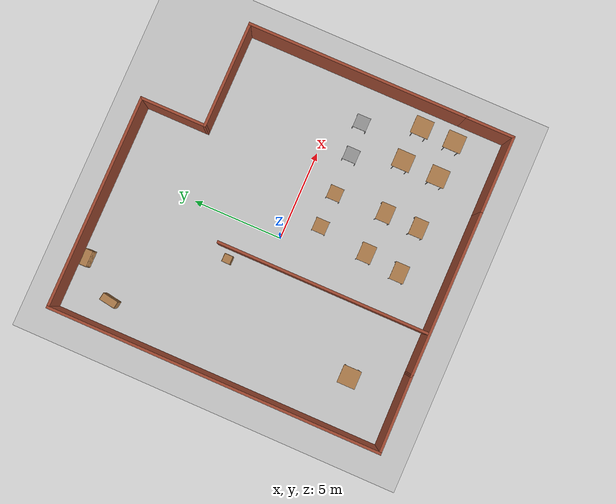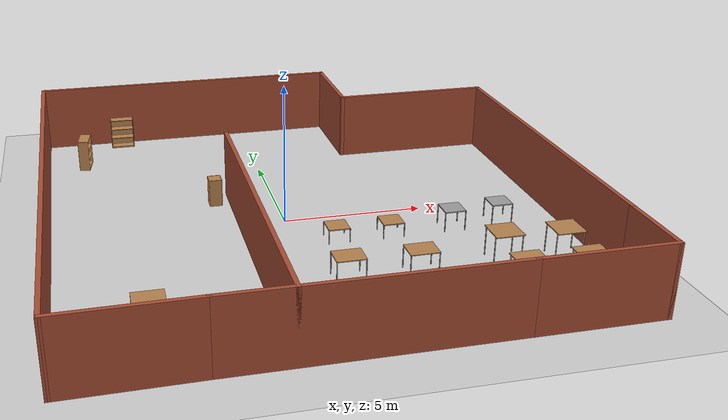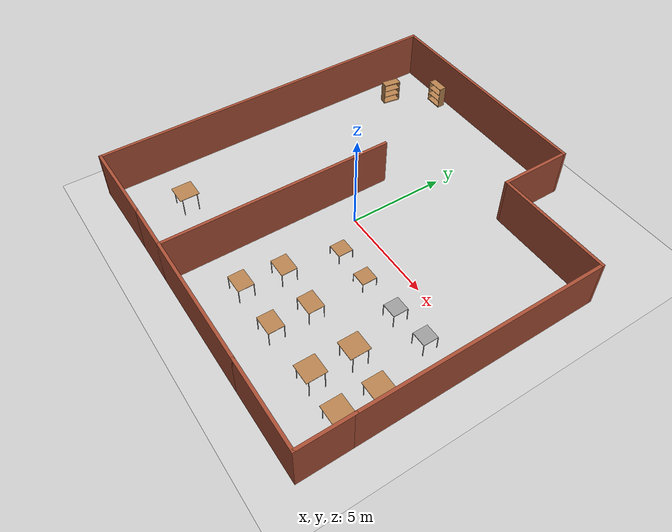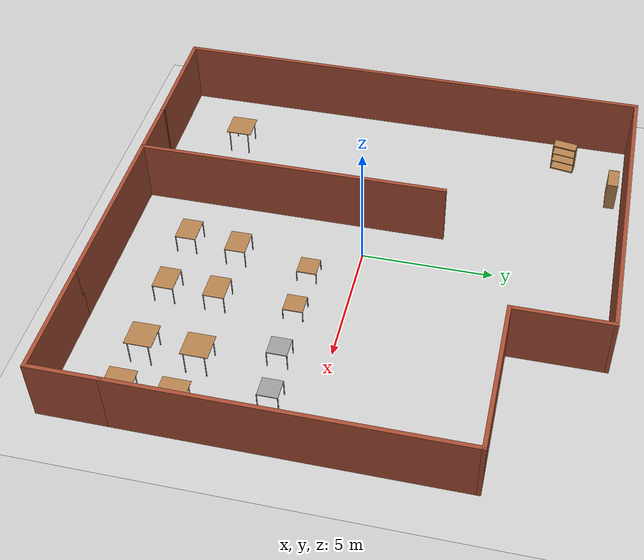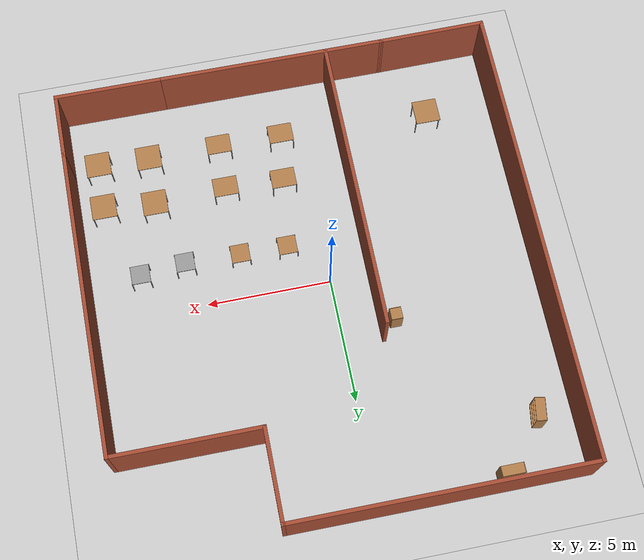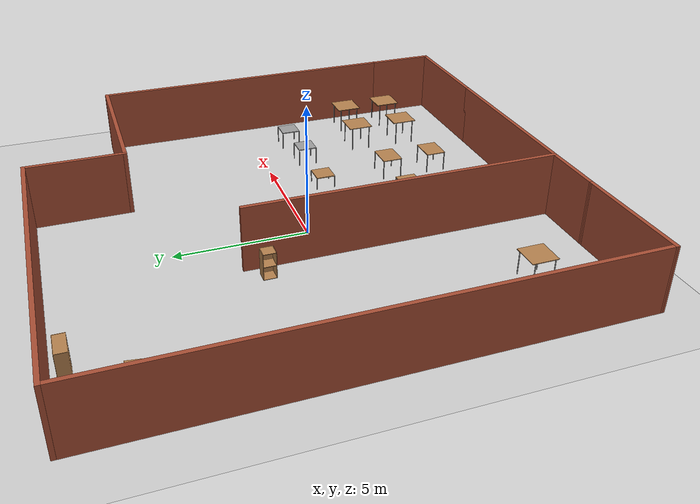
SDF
<sdf version="1.6">
 <world name="default">
  <light name="sun" type="directional">
   <pose>0 0 10 0 -0 0</pose>
   <diffuse>0.8 0.8 0.8 1</diffuse>
   <specular>0.2 0.2 0.2 1</specular>
   <attenuation>
    <range>1000</range>
    <constant>0.9</constant>
    <linear>0.01</linear>
    <quadratic>0.001</quadratic>
   </attenuation>
   <direction>-0.5 0.1 -0.9</direction>
  </light>
  <model name="ground_plane">
   <static>1</static>
   <link name="link">
    <collision name="collision">
     <geometry><plane><normal>0 0 1</normal><size>100 100</size></plane></geometry>
     <surface>
      <contact><collide_bitmask>65535</collide_bitmask></contact>
      <friction><ode><mu>100</mu><mu2>50</mu2></ode></friction>
     </surface>
    </collision>
    <visual name="visual">
     <cast_shadows>0</cast_shadows>
     <geometry><plane><normal>0 0 1</normal><size>100 100</size></plane></geometry>
     <material>
      <script><uri>file://media/materials/scripts/gazebo.material</uri><name>Gazebo/Grey</name></script>
     </material>
    </visual>
   </link>
  </model>
  <gravity>0 0 -9.8</gravity>
  <magnetic_field>6e-06 2.3e-05 -4.2e-05</magnetic_field>
  <atmosphere type="adiabatic"/>
  <physics name="default_physics" default="0" type="ode">
   <max_step_size>0.001</max_step_size>
   <real_time_factor>1</real_time_factor>
   <real_time_update_rate>1000</real_time_update_rate>
  </physics>
  <scene><ambient>0.4 0.4 0.4 1</ambient><background>0.7 0.7 0.7 1</background><shadows>1</shadows></scene>
  <audio><device>default</device></audio>
  <spherical_coordinates>
   <surface_model>EARTH_WGS84</surface_model>
   <latitude_deg>0</latitude_deg>
   <longitude_deg>0</longitude_deg>
   <elevation>0</elevation>
   <heading_deg>0</heading_deg>
  </spherical_coordinates>
  <model name="Bricks_room">
   <pose>0.680196 0.179045 0 0 -0 0</pose>
   <link name="Wall_10">
    <collision name="Wall_10_Collision">
     <geometry><box><size>3.75 0.15 2.5</size></box></geometry>
     <pose>0 0 1.25 0 -0 0</pose>
    </collision>
    <visual name="Wall_10_Visual">
     <pose>0 0 1.25 0 -0 0</pose>
     <geometry><box><size>3.75 0.15 2.5</size></box></geometry>
     <material>
      <script><uri>file://media/materials/scripts/gazebo.material</uri><name>Gazebo/Bricks</name></script>
      <ambient>1 1 1 1</ambient>
     </material>
     <meta><layer>0</layer></meta>
    </visual>
    <pose>3.00044 7.50044 0 0 -0 1.5708</pose>
   </link>
   <link name="Wall_11">
    <collision name="Wall_11_Collision">
     <geometry><box><size>12 0.15 2.5</size></box></geometry>
     <pose>0 0 1.25 0 -0 0</pose>
    </collision>
    <visual name="Wall_11_Visual">
     <pose>0 0 1.25 0 -0 0</pose>
     <geometry><box><size>12 0.15 2.5</size></box></geometry>
     <material>
      <script><uri>file://media/materials/scripts/gazebo.material</uri><name>Gazebo/Bricks</name></script>
      <ambient>1 1 1 1</ambient>
     </material>
     <meta><layer>0</layer></meta>
    </visual>
    <pose>-2.92456 9.30044 0 0 -0 3.14159</pose>
   </link>
   <link name="Wall_12">
    <collision name="Wall_12_Collision">
     <geometry><box><size>18.75 0.15 2.5</size></box></geometry>
     <pose>0 0 1.25 0 -0 0</pose>
    </collision>
    <visual name="Wall_12_Visual">
     <pose>0 0 1.25 0 -0 0</pose>
     <geometry><box><size>18.75 0.15 2.5</size></box></geometry>
     <material>
      <script><uri>file://media/materials/scripts/gazebo.material</uri><name>Gazebo/Bricks</name></script>
      <ambient>1 1 1 1</ambient>
     </material>
     <meta><layer>0</layer></meta>
    </visual>
    <pose>-8.84956 0.000438 0 0 -0 -1.5708</pose>
   </link>
   <link name="Wall_13">
    <collision name="Wall_13_Collision">
     <geometry><box><size>4.40029 0.15 2.5</size></box></geometry>
     <pose>0 0 1.25 0 -0 0</pose>
    </collision>
    <visual name="Wall_13_Visual">
     <pose>0 0 1.25 0 -0 0</pose>
     <geometry><box><size>4.40029 0.15 2.5</size></box></geometry>
     <material>
      <script><uri>file://media/materials/scripts/gazebo.material</uri><name>Gazebo/Bricks</name></script>
      <ambient>1 1 1 1</ambient>
     </material>
     <meta><layer>0</layer></meta>
    </visual>
    <pose>-6.72456 -9.27456 0 0 -0 0.011764</pose>
   </link>
   <link name="Wall_33">
    <collision name="Wall_33_Collision">
     <geometry><box><size>12 0.15 2.5</size></box></geometry>
     <pose>0 0 1.25 0 -0 0</pose>
    </collision>
    <visual name="Wall_33_Visual">
     <pose>0 0 1.25 0 -0 0</pose>
     <geometry><box><size>12 0.15 2.5</size></box></geometry>
     <material>
      <script><uri>file://media/materials/scripts/gazebo.material</uri><name>Gazebo/Bricks</name></script>
      <ambient>1 1 1 1</ambient>
     </material>
     <meta><layer>0</layer></meta>
    </visual>
    <pose>-2.26956 -3.32456 0 0 -0 1.5708</pose>
   </link>
   <link name="Wall_5">
    <collision name="Wall_5_Collision">
     <geometry><box><size>9.25 0.15 2.5</size></box></geometry>
     <pose>0 0 1.25 0 -0 0</pose>
    </collision>
    <visual name="Wall_5_Visual">
     <pose>0 0 1.25 0 -0 0</pose>
     <geometry><box><size>9.25 0.15 2.5</size></box></geometry>
     <material>
      <script><uri>file://media/materials/scripts/gazebo.material</uri><name>Gazebo/Bricks</name></script>
      <ambient>1 1 1 1</ambient>
     </material>
     <meta><layer>0</layer></meta>
    </visual>
    <pose>-0.049562 -9.24956 0 0 -0 0</pose>
   </link>
   <link name="Wall_6">
    <collision name="Wall_6_Collision">
     <geometry><box><size>4.5 0.15 2.5</size></box></geometry>
     <pose>0 0 1.25 0 -0 0</pose>
    </collision>
    <visual name="Wall_6_Visual">
     <pose>0 0 1.25 0 -0 0</pose>
     <geometry><box><size>4.5 0.15 2.5</size></box></geometry>
     <material>
      <script><uri>file://media/materials/scripts/gazebo.material</uri><name>Gazebo/Bricks</name></script>
      <ambient>1 1 1 1</ambient>
     </material>
     <meta><layer>0</layer></meta>
    </visual>
    <pose>6.67544 -9.24956 0 0 -0 0</pose>
   </link>
   <link name="Wall_7">
    <collision name="Wall_7_Collision">
     <geometry><box><size>2.75 0.15 2.5</size></box></geometry>
     <pose>0 0 1.25 0 -0 0</pose>
    </collision>
    <visual name="Wall_7_Visual">
     <pose>0 0 1.25 0 -0 0</pose>
     <geometry><box><size>2.75 0.15 2.5</size></box></geometry>
     <material>
      <script><uri>file://media/materials/scripts/gazebo.material</uri><name>Gazebo/Bricks</name></script>
      <ambient>1 1 1 1</ambient>
     </material>
     <meta><layer>0</layer></meta>
    </visual>
    <pose>8.85044 -7.94956 0 0 -0 1.5708</pose>
   </link>
   <link name="Wall_8">
    <collision name="Wall_8_Collision">
     <geometry><box><size>12.5 0.15 2.5</size></box></geometry>
     <pose>0 0 1.25 0 -0 0</pose>
    </collision>
    <visual name="Wall_8_Visual">
     <pose>0 0 1.25 0 -0 0</pose>
     <geometry><box><size>12.5 0.15 2.5</size></box></geometry>
     <material>
      <script><uri>file://media/materials/scripts/gazebo.material</uri><name>Gazebo/Bricks</name></script>
      <ambient>1 1 1 1</ambient>
     </material>
     <meta><layer>0</layer></meta>
    </visual>
    <pose>8.85044 -0.474562 0 0 -0 1.5708</pose>
   </link>
   <link name="Wall_9">
    <collision name="Wall_9_Collision">
     <geometry><box><size>6 0.15 2.5</size></box></geometry>
     <pose>0 0 1.25 0 -0 0</pose>
    </collision>
    <visual name="Wall_9_Visual">
     <pose>0 0 1.25 0 -0 0</pose>
     <geometry><box><size>6 0.15 2.5</size></box></geometry>
     <material>
      <script><uri>file://media/materials/scripts/gazebo.material</uri><name>Gazebo/Bricks</name></script>
      <ambient>1 1 1 1</ambient>
     </material>
     <meta><layer>0</layer></meta>
    </visual>
    <pose>5.92544 5.70044 0 0 -0 3.14159</pose>
   </link>
   <static>1</static>
  </model>
  <model name="table">
   <static>1</static>
   <link name="link">
    <collision name="surface">
     <pose>0 0 0.5 0 -0 0</pose>
     <geometry><box><size>0.75 0.75 0.04</size></box></geometry>
    </collision>
    <visual name="visual1">
     <pose>0 0 0.5 0 -0 0</pose>
     <geometry><box><size>0.75 0.75 0.04</size></box></geometry>
     <material>
      <script><uri>file://media/materials/scripts/gazebo.material</uri><name>Gazebo/Wood</name></script>
     </material>
    </visual>
    <collision name="front_left_leg">
     <pose>0.37 0.37 0.25 0 -0 0</pose>
     <geometry><cylinder><radius>0.02</radius><length>0.5</length></cylinder></geometry>
    </collision>
    <visual name="front_left_leg">
     <pose>0.37 0.37 0.25 0 -0 0</pose>
     <geometry><cylinder><radius>0.02</radius><length>0.5</length></cylinder></geometry>
     <material>
      <script><uri>file://media/materials/scripts/gazebo.material</uri><name>Gazebo/Grey</name></script>
     </material>
    </visual>
    <collision name="front_right_leg">
     <pose>0.37 -0.37 0.25 0 -0 0</pose>
     <geometry><cylinder><radius>0.02</radius><length>0.5</length></cylinder></geometry>
    </collision>
    <visual name="front_right_leg">
     <pose>0.37 -0.37 0.25 0 -0 0</pose>
     <geometry><cylinder><radius>0.02</radius><length>0.5</length></cylinder></geometry>
     <material>
      <script><uri>file://media/materials/scripts/gazebo.material</uri><name>Gazebo/Grey</name></script>
     </material>
    </visual>
    <collision name="back_right_leg">
     <pose>-0.37 -0.37 0.25 0 -0 0</pose>
     <geometry><cylinder><radius>0.02</radius><length>0.5</length></cylinder></geometry>
    </collision>
    <visual name="back_right_leg">
     <pose>-0.37 -0.37 0.25 0 -0 0</pose>
     <geometry><cylinder><radius>0.02</radius><length>0.5</length></cylinder></geometry>
     <material>
      <script><uri>file://media/materials/scripts/gazebo.material</uri><name>Gazebo/Grey</name></script>
     </material>
    </visual>
    <collision name="back_left_leg">
     <pose>-0.37 0.37 0.25 0 -0 0</pose>
     <geometry><cylinder><radius>0.02</radius><length>0.5</length></cylinder></geometry>
    </collision>
    <visual name="back_left_leg">
     <pose>-0.37 0.37 0.25 0 -0 0</pose>
     <geometry><cylinder><radius>0.02</radius><length>0.5</length></cylinder></geometry>
     <material>
      <script><uri>file://media/materials/scripts/gazebo.material</uri><name>Gazebo/Grey</name></script>
     </material>
    </visual>
    <velocity_decay><linear>0</linear><angular>0</angular></velocity_decay>
   </link>
   <pose>1.44056 -1.73495 0 0 -0 0</pose>
  </model>
  <model name="table_0">
   <static>1</static>
   <link name="link">
    <collision name="surface">
     <pose>0 0 0.8 0 -0 0</pose>
     <geometry><box><size>1 0.8 0.03</size></box></geometry>
    </collision>
    <visual name="visual1">
     <pose>0 0 0.8 0 -0 0</pose>
     <geometry><box><size>1 0.8 0.03</size></box></geometry>
     <material>
      <script><uri>file://media/materials/scripts/gazebo.material</uri><name>Gazebo/Wood</name></script>
     </material>
    </visual>
    <collision name="front_left_leg">
     <pose>0.48 0.38 0.4 0 -0 0</pose>
     <geometry><cylinder><radius>0.02</radius><length>0.8</length></cylinder></geometry>
    </collision>
    <visual name="front_left_leg">
     <pose>0.48 0.38 0.4 0 -0 0</pose>
     <geometry><cylinder><radius>0.02</radius><length>0.8</length></cylinder></geometry>
     <material>
      <script><uri>file://media/materials/scripts/gazebo.material</uri><name>Gazebo/Grey</name></script>
     </material>
    </visual>
    <collision name="front_right_leg">
     <pose>0.48 -0.38 0.4 0 -0 0</pose>
     <geometry><cylinder><radius>0.02</radius><length>0.8</length></cylinder></geometry>
    </collision>
    <visual name="front_right_leg">
     <pose>0.48 -0.38 0.4 0 -0 0</pose>
     <geometry><cylinder><radius>0.02</radius><length>0.8</length></cylinder></geometry>
     <material>
      <script><uri>file://media/materials/scripts/gazebo.material</uri><name>Gazebo/Grey</name></script>
     </material>
    </visual>
    <collision name="back_right_leg">
     <pose>-0.48 -0.38 0.4 0 -0 0</pose>
     <geometry><cylinder><radius>0.02</radius><length>0.8</length></cylinder></geometry>
    </collision>
    <visual name="back_right_leg">
     <pose>-0.48 -0.38 0.4 0 -0 0</pose>
     <geometry><cylinder><radius>0.02</radius><length>0.8</length></cylinder></geometry>
     <material>
      <script><uri>file://media/materials/scripts/gazebo.material</uri><name>Gazebo/Grey</name></script>
     </material>
    </visual>
    <collision name="back_left_leg">
     <pose>-0.48 0.38 0.4 0 -0 0</pose>
     <geometry><cylinder><radius>0.02</radius><length>0.8</length></cylinder></geometry>
    </collision>
    <visual name="back_left_leg">
     <pose>-0.48 0.38 0.4 0 -0 0</pose>
     <geometry><cylinder><radius>0.02</radius><length>0.8</length></cylinder></geometry>
     <material>
      <script><uri>file://media/materials/scripts/gazebo.material</uri><name>Gazebo/Grey</name></script>
     </material>
    </visual>
    <velocity_decay><linear>0</linear><angular>0</angular></velocity_decay>
   </link>
   <pose>3.4514 -4.63262 0 0 -0 0</pose>
  </model>
  <model name="table_1m">
   <static>1</static>
   <link name="link">
    <collision name="surface">
     <pose>0 0 1.01 0 -0 0</pose>
     <geometry><box><size>1 1.01 0.03</size></box></geometry>
    </collision>
    <visual name="visual1">
     <pose>0 0 1.01 0 -0 0</pose>
     <geometry><box><size>1 1.01 0.03</size></box></geometry>
     <material>
      <script><uri>file://media/materials/scripts/gazebo.material</uri><name>Gazebo/Wood</name></script>
     </material>
    </visual>
    <collision name="front_left_leg">
     <pose>0.48 0.38 0.5005 0 -0 0</pose>
     <geometry><cylinder><radius>0.02</radius><length>1.01</length></cylinder></geometry>
    </collision>
    <visual name="front_left_leg">
     <pose>0.48 0.38 0.5005 0 -0 0</pose>
     <geometry><cylinder><radius>0.02</radius><length>1.01</length></cylinder></geometry>
     <material>
      <script><uri>file://media/materials/scripts/gazebo.material</uri><name>Gazebo/Grey</name></script>
     </material>
    </visual>
    <collision name="front_right_leg">
     <pose>0.48 -0.38 0.5005 0 -0 0</pose>
     <geometry><cylinder><radius>0.02</radius><length>1.01</length></cylinder></geometry>
    </collision>
    <visual name="front_right_leg">
     <pose>0.48 -0.38 0.5005 0 -0 0</pose>
     <geometry><cylinder><radius>0.02</radius><length>1.01</length></cylinder></geometry>
     <material>
      <script><uri>file://media/materials/scripts/gazebo.material</uri><name>Gazebo/Grey</name></script>
     </material>
    </visual>
    <collision name="back_right_leg">
     <pose>-0.48 -0.38 0.5005 0 -0 0</pose>
     <geometry><cylinder><radius>0.02</radius><length>1.01</length></cylinder></geometry>
    </collision>
    <visual name="back_right_leg">
     <pose>-0.48 -0.38 0.5005 0 -0 0</pose>
     <geometry><cylinder><radius>0.02</radius><length>1.01</length></cylinder></geometry>
     <material>
      <script><uri>file://media/materials/scripts/gazebo.material</uri><name>Gazebo/Grey</name></script>
     </material>
    </visual>
    <collision name="back_left_leg">
     <pose>-0.48 0.38 0.5005 0 -0 0</pose>
     <geometry><cylinder><radius>0.02</radius><length>1.01</length></cylinder></geometry>
    </collision>
    <visual name="back_left_leg">
     <pose>-0.48 0.38 0.5005 0 -0 0</pose>
     <geometry><cylinder><radius>0.02</radius><length>1.01</length></cylinder></geometry>
     <material>
      <script><uri>file://media/materials/scripts/gazebo.material</uri><name>Gazebo/Grey</name></script>
     </material>
    </visual>
    <velocity_decay><linear>0</linear><angular>0</angular></velocity_decay>
   </link>
   <pose>6.33055 -6.41804 0 0 -0 0</pose>
  </model>
  <model name="table_1m_0">
   <static>1</static>
   <link name="link">
    <collision name="surface">
     <pose>0 0 1.01 0 -0 0</pose>
     <geometry><box><size>1 1.01 0.03</size></box></geometry>
    </collision>
    <visual name="visual1">
     <pose>0 0 1.01 0 -0 0</pose>
     <geometry><box><size>1 1.01 0.03</size></box></geometry>
     <material>
      <script><uri>file://media/materials/scripts/gazebo.material</uri><name>Gazebo/Wood</name></script>
     </material>
    </visual>
    <collision name="front_left_leg">
     <pose>0.48 0.38 0.5005 0 -0 0</pose>
     <geometry><cylinder><radius>0.02</radius><length>1.01</length></cylinder></geometry>
    </collision>
    <visual name="front_left_leg">
     <pose>0.48 0.38 0.5005 0 -0 0</pose>
     <geometry><cylinder><radius>0.02</radius><length>1.01</length></cylinder></geometry>
     <material>
      <script><uri>file://media/materials/scripts/gazebo.material</uri><name>Gazebo/Grey</name></script>
     </material>
    </visual>
    <collision name="front_right_leg">
     <pose>0.48 -0.38 0.5005 0 -0 0</pose>
     <geometry><cylinder><radius>0.02</radius><length>1.01</length></cylinder></geometry>
    </collision>
    <visual name="front_right_leg">
     <pose>0.48 -0.38 0.5005 0 -0 0</pose>
     <geometry><cylinder><radius>0.02</radius><length>1.01</length></cylinder></geometry>
     <material>
      <script><uri>file://media/materials/scripts/gazebo.material</uri><name>Gazebo/Grey</name></script>
     </material>
    </visual>
    <collision name="back_right_leg">
     <pose>-0.48 -0.38 0.5005 0 -0 0</pose>
     <geometry><cylinder><radius>0.02</radius><length>1.01</length></cylinder></geometry>
    </collision>
    <visual name="back_right_leg">
     <pose>-0.48 -0.38 0.5005 0 -0 0</pose>
     <geometry><cylinder><radius>0.02</radius><length>1.01</length></cylinder></geometry>
     <material>
      <script><uri>file://media/materials/scripts/gazebo.material</uri><name>Gazebo/Grey</name></script>
     </material>
    </visual>
    <collision name="back_left_leg">
     <pose>-0.48 0.38 0.5005 0 -0 0</pose>
     <geometry><cylinder><radius>0.02</radius><length>1.01</length></cylinder></geometry>
    </collision>
    <visual name="back_left_leg">
     <pose>-0.48 0.38 0.5005 0 -0 0</pose>
     <geometry><cylinder><radius>0.02</radius><length>1.01</length></cylinder></geometry>
     <material>
      <script><uri>file://media/materials/scripts/gazebo.material</uri><name>Gazebo/Grey</name></script>
     </material>
    </visual>
    <velocity_decay><linear>0</linear><angular>0</angular></velocity_decay>
   </link>
   <pose>6.37839 -4.38142 0 0 -0 0</pose>
  </model>
  <model name="table_1m_1">
   <static>1</static>
   <link name="link">
    <collision name="surface">
     <pose>0 0 1.01 0 -0 0</pose>
     <geometry><box><size>1 1.01 0.03</size></box></geometry>
    </collision>
    <visual name="visual1">
     <pose>0 0 1.01 0 -0 0</pose>
     <geometry><box><size>1 1.01 0.03</size></box></geometry>
     <material>
      <script><uri>file://media/materials/scripts/gazebo.material</uri><name>Gazebo/Wood</name></script>
     </material>
    </visual>
    <collision name="front_left_leg">
     <pose>0.48 0.38 0.5005 0 -0 0</pose>
     <geometry><cylinder><radius>0.02</radius><length>1.01</length></cylinder></geometry>
    </collision>
    <visual name="front_left_leg">
     <pose>0.48 0.38 0.5005 0 -0 0</pose>
     <geometry><cylinder><radius>0.02</radius><length>1.01</length></cylinder></geometry>
     <material>
      <script><uri>file://media/materials/scripts/gazebo.material</uri><name>Gazebo/Grey</name></script>
     </material>
    </visual>
    <collision name="front_right_leg">
     <pose>0.48 -0.38 0.5005 0 -0 0</pose>
     <geometry><cylinder><radius>0.02</radius><length>1.01</length></cylinder></geometry>
    </collision>
    <visual name="front_right_leg">
     <pose>0.48 -0.38 0.5005 0 -0 0</pose>
     <geometry><cylinder><radius>0.02</radius><length>1.01</length></cylinder></geometry>
     <material>
      <script><uri>file://media/materials/scripts/gazebo.material</uri><name>Gazebo/Grey</name></script>
     </material>
    </visual>
    <collision name="back_right_leg">
     <pose>-0.48 -0.38 0.5005 0 -0 0</pose>
     <geometry><cylinder><radius>0.02</radius><length>1.01</length></cylinder></geometry>
    </collision>
    <visual name="back_right_leg">
     <pose>-0.48 -0.38 0.5005 0 -0 0</pose>
     <geometry><cylinder><radius>0.02</radius><length>1.01</length></cylinder></geometry>
     <material>
      <script><uri>file://media/materials/scripts/gazebo.material</uri><name>Gazebo/Grey</name></script>
     </material>
    </visual>
    <collision name="back_left_leg">
     <pose>-0.48 0.38 0.5005 0 -0 0</pose>
     <geometry><cylinder><radius>0.02</radius><length>1.01</length></cylinder></geometry>
    </collision>
    <visual name="back_left_leg">
     <pose>-0.48 0.38 0.5005 0 -0 0</pose>
     <geometry><cylinder><radius>0.02</radius><length>1.01</length></cylinder></geometry>
     <material>
      <script><uri>file://media/materials/scripts/gazebo.material</uri><name>Gazebo/Grey</name></script>
     </material>
    </visual>
    <velocity_decay><linear>0</linear><angular>0</angular></velocity_decay>
   </link>
   <pose>8.42759 -4.60264 0 0 -0 0</pose>
  </model>
  <model name="table_1m_2">
   <static>1</static>
   <link name="link">
    <collision name="surface">
     <pose>0 0 1.01 0 -0 0</pose>
     <geometry><box><size>1 1.01 0.03</size></box></geometry>
    </collision>
    <visual name="visual1">
     <pose>0 0 1.01 0 -0 0</pose>
     <geometry><box><size>1 1.01 0.03</size></box></geometry>
     <material>
      <script><uri>file://media/materials/scripts/gazebo.material</uri><name>Gazebo/Wood</name></script>
     </material>
    </visual>
    <collision name="front_left_leg">
     <pose>0.48 0.38 0.5005 0 -0 0</pose>
     <geometry><cylinder><radius>0.02</radius><length>1.01</length></cylinder></geometry>
    </collision>
    <visual name="front_left_leg">
     <pose>0.48 0.38 0.5005 0 -0 0</pose>
     <geometry><cylinder><radius>0.02</radius><length>1.01</length></cylinder></geometry>
     <material>
      <script><uri>file://media/materials/scripts/gazebo.material</uri><name>Gazebo/Grey</name></script>
     </material>
    </visual>
    <collision name="front_right_leg">
     <pose>0.48 -0.38 0.5005 0 -0 0</pose>
     <geometry><cylinder><radius>0.02</radius><length>1.01</length></cylinder></geometry>
    </collision>
    <visual name="front_right_leg">
     <pose>0.48 -0.38 0.5005 0 -0 0</pose>
     <geometry><cylinder><radius>0.02</radius><length>1.01</length></cylinder></geometry>
     <material>
      <script><uri>file://media/materials/scripts/gazebo.material</uri><name>Gazebo/Grey</name></script>
     </material>
    </visual>
    <collision name="back_right_leg">
     <pose>-0.48 -0.38 0.5005 0 -0 0</pose>
     <geometry><cylinder><radius>0.02</radius><length>1.01</length></cylinder></geometry>
    </collision>
    <visual name="back_right_leg">
     <pose>-0.48 -0.38 0.5005 0 -0 0</pose>
     <geometry><cylinder><radius>0.02</radius><length>1.01</length></cylinder></geometry>
     <material>
      <script><uri>file://media/materials/scripts/gazebo.material</uri><name>Gazebo/Grey</name></script>
     </material>
    </visual>
    <collision name="back_left_leg">
     <pose>-0.48 0.38 0.5005 0 -0 0</pose>
     <geometry><cylinder><radius>0.02</radius><length>1.01</length></cylinder></geometry>
    </collision>
    <visual name="back_left_leg">
     <pose>-0.48 0.38 0.5005 0 -0 0</pose>
     <geometry><cylinder><radius>0.02</radius><length>1.01</length></cylinder></geometry>
     <material>
      <script><uri>file://media/materials/scripts/gazebo.material</uri><name>Gazebo/Grey</name></script>
     </material>
    </visual>
    <velocity_decay><linear>0</linear><angular>0</angular></velocity_decay>
   </link>
   <pose>8.39721 -6.49268 0 0 -0 0</pose>
  </model>
  <model name="table_1">
   <static>1</static>
   <link name="link">
    <collision name="surface">
     <pose>0 0 0.8 0 -0 0</pose>
     <geometry><box><size>1 0.8 0.03</size></box></geometry>
    </collision>
    <visual name="visual1">
     <pose>0 0 0.8 0 -0 0</pose>
     <geometry><box><size>1 0.8 0.03</size></box></geometry>
     <material>
      <script><uri>file://media/materials/scripts/gazebo.material</uri><name>Gazebo/Wood</name></script>
     </material>
    </visual>
    <collision name="front_left_leg">
     <pose>0.48 0.38 0.4 0 -0 0</pose>
     <geometry><cylinder><radius>0.02</radius><length>0.8</length></cylinder></geometry>
    </collision>
    <visual name="front_left_leg">
     <pose>0.48 0.38 0.4 0 -0 0</pose>
     <geometry><cylinder><radius>0.02</radius><length>0.8</length></cylinder></geometry>
     <material>
      <script><uri>file://media/materials/scripts/gazebo.material</uri><name>Gazebo/Grey</name></script>
     </material>
    </visual>
    <collision name="front_right_leg">
     <pose>0.48 -0.38 0.4 0 -0 0</pose>
     <geometry><cylinder><radius>0.02</radius><length>0.8</length></cylinder></geometry>
    </collision>
    <visual name="front_right_leg">
     <pose>0.48 -0.38 0.4 0 -0 0</pose>
     <geometry><cylinder><radius>0.02</radius><length>0.8</length></cylinder></geometry>
     <material>
      <script><uri>file://media/materials/scripts/gazebo.material</uri><name>Gazebo/Grey</name></script>
     </material>
    </visual>
    <collision name="back_right_leg">
     <pose>-0.48 -0.38 0.4 0 -0 0</pose>
     <geometry><cylinder><radius>0.02</radius><length>0.8</length></cylinder></geometry>
    </collision>
    <visual name="back_right_leg">
     <pose>-0.48 -0.38 0.4 0 -0 0</pose>
     <geometry><cylinder><radius>0.02</radius><length>0.8</length></cylinder></geometry>
     <material>
      <script><uri>file://media/materials/scripts/gazebo.material</uri><name>Gazebo/Grey</name></script>
     </material>
    </visual>
    <collision name="back_left_leg">
     <pose>-0.48 0.38 0.4 0 -0 0</pose>
     <geometry><cylinder><radius>0.02</radius><length>0.8</length></cylinder></geometry>
    </collision>
    <visual name="back_left_leg">
     <pose>-0.48 0.38 0.4 0 -0 0</pose>
     <geometry><cylinder><radius>0.02</radius><length>0.8</length></cylinder></geometry>
     <material>
      <script><uri>file://media/materials/scripts/gazebo.material</uri><name>Gazebo/Grey</name></script>
     </material>
    </visual>
    <velocity_decay><linear>0</linear><angular>0</angular></velocity_decay>
   </link>
   <pose>3.41242 -6.56263 0 0 -0 0</pose>
  </model>
  <model name="table_2">
   <static>1</static>
   <link name="link">
    <collision name="surface">
     <pose>0 0 0.8 0 -0 0</pose>
     <geometry><box><size>1 0.8 0.03</size></box></geometry>
    </collision>
    <visual name="visual1">
     <pose>0 0 0.8 0 -0 0</pose>
     <geometry><box><size>1 0.8 0.03</size></box></geometry>
     <material>
      <script><uri>file://media/materials/scripts/gazebo.material</uri><name>Gazebo/Wood</name></script>
     </material>
    </visual>
    <collision name="front_left_leg">
     <pose>0.48 0.38 0.4 0 -0 0</pose>
     <geometry><cylinder><radius>0.02</radius><length>0.8</length></cylinder></geometry>
    </collision>
    <visual name="front_left_leg">
     <pose>0.48 0.38 0.4 0 -0 0</pose>
     <geometry><cylinder><radius>0.02</radius><length>0.8</length></cylinder></geometry>
     <material>
      <script><uri>file://media/materials/scripts/gazebo.material</uri><name>Gazebo/Grey</name></script>
     </material>
    </visual>
    <collision name="front_right_leg">
     <pose>0.48 -0.38 0.4 0 -0 0</pose>
     <geometry><cylinder><radius>0.02</radius><length>0.8</length></cylinder></geometry>
    </collision>
    <visual name="front_right_leg">
     <pose>0.48 -0.38 0.4 0 -0 0</pose>
     <geometry><cylinder><radius>0.02</radius><length>0.8</length></cylinder></geometry>
     <material>
      <script><uri>file://media/materials/scripts/gazebo.material</uri><name>Gazebo/Grey</name></script>
     </material>
    </visual>
    <collision name="back_right_leg">
     <pose>-0.48 -0.38 0.4 0 -0 0</pose>
     <geometry><cylinder><radius>0.02</radius><length>0.8</length></cylinder></geometry>
    </collision>
    <visual name="back_right_leg">
     <pose>-0.48 -0.38 0.4 0 -0 0</pose>
     <geometry><cylinder><radius>0.02</radius><length>0.8</length></cylinder></geometry>
     <material>
      <script><uri>file://media/materials/scripts/gazebo.material</uri><name>Gazebo/Grey</name></script>
     </material>
    </visual>
    <collision name="back_left_leg">
     <pose>-0.48 0.38 0.4 0 -0 0</pose>
     <geometry><cylinder><radius>0.02</radius><length>0.8</length></cylinder></geometry>
    </collision>
    <visual name="back_left_leg">
     <pose>-0.48 0.38 0.4 0 -0 0</pose>
     <geometry><cylinder><radius>0.02</radius><length>0.8</length></cylinder></geometry>
     <material>
      <script><uri>file://media/materials/scripts/gazebo.material</uri><name>Gazebo/Grey</name></script>
     </material>
    </visual>
    <velocity_decay><linear>0</linear><angular>0</angular></velocity_decay>
   </link>
   <pose>1.07089 -4.54871 0 0 -0 0</pose>
  </model>
  <model name="table_3">
   <static>1</static>
   <link name="link">
    <collision name="surface">
     <pose>0 0 0.8 0 -0 0</pose>
     <geometry><box><size>1 0.8 0.03</size></box></geometry>
    </collision>
    <visual name="visual1">
     <pose>0 0 0.8 0 -0 0</pose>
     <geometry><box><size>1 0.8 0.03</size></box></geometry>
     <material>
      <script><uri>file://media/materials/scripts/gazebo.material</uri><name>Gazebo/Wood</name></script>
     </material>
    </visual>
    <collision name="front_left_leg">
     <pose>0.48 0.38 0.4 0 -0 0</pose>
     <geometry><cylinder><radius>0.02</radius><length>0.8</length></cylinder></geometry>
    </collision>
    <visual name="front_left_leg">
     <pose>0.48 0.38 0.4 0 -0 0</pose>
     <geometry><cylinder><radius>0.02</radius><length>0.8</length></cylinder></geometry>
     <material>
      <script><uri>file://media/materials/scripts/gazebo.material</uri><name>Gazebo/Grey</name></script>
     </material>
    </visual>
    <collision name="front_right_leg">
     <pose>0.48 -0.38 0.4 0 -0 0</pose>
     <geometry><cylinder><radius>0.02</radius><length>0.8</length></cylinder></geometry>
    </collision>
    <visual name="front_right_leg">
     <pose>0.48 -0.38 0.4 0 -0 0</pose>
     <geometry><cylinder><radius>0.02</radius><length>0.8</length></cylinder></geometry>
     <material>
      <script><uri>file://media/materials/scripts/gazebo.material</uri><name>Gazebo/Grey</name></script>
     </material>
    </visual>
    <collision name="back_right_leg">
     <pose>-0.48 -0.38 0.4 0 -0 0</pose>
     <geometry><cylinder><radius>0.02</radius><length>0.8</length></cylinder></geometry>
    </collision>
    <visual name="back_right_leg">
     <pose>-0.48 -0.38 0.4 0 -0 0</pose>
     <geometry><cylinder><radius>0.02</radius><length>0.8</length></cylinder></geometry>
     <material>
      <script><uri>file://media/materials/scripts/gazebo.material</uri><name>Gazebo/Grey</name></script>
     </material>
    </visual>
    <collision name="back_left_leg">
     <pose>-0.48 0.38 0.4 0 -0 0</pose>
     <geometry><cylinder><radius>0.02</radius><length>0.8</length></cylinder></geometry>
    </collision>
    <visual name="back_left_leg">
     <pose>-0.48 0.38 0.4 0 -0 0</pose>
     <geometry><cylinder><radius>0.02</radius><length>0.8</length></cylinder></geometry>
     <material>
      <script><uri>file://media/materials/scripts/gazebo.material</uri><name>Gazebo/Grey</name></script>
     </material>
    </visual>
    <velocity_decay><linear>0</linear><angular>0</angular></velocity_decay>
   </link>
   <pose>0.812928 -6.56728 0 0 -0 0</pose>
  </model>
  <model name="table_4">
   <static>1</static>
   <link name="link">
    <collision name="surface">
     <pose>0 0 0.5 0 -0 0</pose>
     <geometry><box><size>0.75 0.75 0.04</size></box></geometry>
    </collision>
    <visual name="visual1">
     <pose>0 0 0.5 0 -0 0</pose>
     <geometry><box><size>0.75 0.75 0.04</size></box></geometry>
     <material>
      <script><uri>file://media/materials/scripts/gazebo.material</uri><name>Gazebo/Wood</name></script>
     </material>
    </visual>
    <collision name="front_left_leg">
     <pose>0.37 0.37 0.25 0 -0 0</pose>
     <geometry><cylinder><radius>0.02</radius><length>0.5</length></cylinder></geometry>
    </collision>
    <visual name="front_left_leg">
     <pose>0.37 0.37 0.25 0 -0 0</pose>
     <geometry><cylinder><radius>0.02</radius><length>0.5</length></cylinder></geometry>
     <material>
      <script><uri>file://media/materials/scripts/gazebo.material</uri><name>Gazebo/Grey</name></script>
     </material>
    </visual>
    <collision name="front_right_leg">
     <pose>0.37 -0.37 0.25 0 -0 0</pose>
     <geometry><cylinder><radius>0.02</radius><length>0.5</length></cylinder></geometry>
    </collision>
    <visual name="front_right_leg">
     <pose>0.37 -0.37 0.25 0 -0 0</pose>
     <geometry><cylinder><radius>0.02</radius><length>0.5</length></cylinder></geometry>
     <material>
      <script><uri>file://media/materials/scripts/gazebo.material</uri><name>Gazebo/Grey</name></script>
     </material>
    </visual>
    <collision name="back_right_leg">
     <pose>-0.37 -0.37 0.25 0 -0 0</pose>
     <geometry><cylinder><radius>0.02</radius><length>0.5</length></cylinder></geometry>
    </collision>
    <visual name="back_right_leg">
     <pose>-0.37 -0.37 0.25 0 -0 0</pose>
     <geometry><cylinder><radius>0.02</radius><length>0.5</length></cylinder></geometry>
     <material>
      <script><uri>file://media/materials/scripts/gazebo.material</uri><name>Gazebo/Grey</name></script>
     </material>
    </visual>
    <collision name="back_left_leg">
     <pose>-0.37 0.37 0.25 0 -0 0</pose>
     <geometry><cylinder><radius>0.02</radius><length>0.5</length></cylinder></geometry>
    </collision>
    <visual name="back_left_leg">
     <pose>-0.37 0.37 0.25 0 -0 0</pose>
     <geometry><cylinder><radius>0.02</radius><length>0.5</length></cylinder></geometry>
     <material>
      <script><uri>file://media/materials/scripts/gazebo.material</uri><name>Gazebo/Grey</name></script>
     </material>
    </visual>
    <velocity_decay><linear>0</linear><angular>0</angular></velocity_decay>
   </link>
   <pose>3.36396 -1.75015 0 0 -0 0</pose>
  </model>
  <model name="table_5">
   <static>1</static>
   <link name="link">
    <collision name="surface">
     <pose>0 0 0.72 0 -0 0</pose>
     <geometry><box><size>0.75 0.75 0.04</size></box></geometry>
    </collision>
    <visual name="visual1">
     <pose>0 0 0.72 0 -0 0</pose>
     <geometry><box><size>0.75 0.75 0.04</size></box></geometry>
     <material>
      <script><uri>file://media/materials/scripts/gazebo.material</uri><name>Gazebo/Grey</name></script>
     </material>
    </visual>
    <collision name="front_left_leg">
     <pose>0.37 0.37 0.36 0 -0 0</pose>
     <geometry><cylinder><radius>0.02</radius><length>0.72</length></cylinder></geometry>
    </collision>
    <visual name="front_left_leg">
     <pose>0.37 0.37 0.36 0 -0 0</pose>
     <geometry><cylinder><radius>0.02</radius><length>0.72</length></cylinder></geometry>
     <material>
      <script><uri>file://media/materials/scripts/gazebo.material</uri><name>Gazebo/Grey</name></script>
     </material>
    </visual>
    <collision name="front_right_leg">
     <pose>0.37 -0.37 0.36 0 -0 0</pose>
     <geometry><cylinder><radius>0.02</radius><length>0.72</length></cylinder></geometry>
    </collision>
    <visual name="front_right_leg">
     <pose>0.37 -0.37 0.36 0 -0 0</pose>
     <geometry><cylinder><radius>0.02</radius><length>0.72</length></cylinder></geometry>
     <material>
      <script><uri>file://media/materials/scripts/gazebo.material</uri><name>Gazebo/Grey</name></script>
     </material>
    </visual>
    <collision name="back_right_leg">
     <pose>-0.37 -0.37 0.36 0 -0 0</pose>
     <geometry><cylinder><radius>0.02</radius><length>0.72</length></cylinder></geometry>
    </collision>
    <visual name="back_right_leg">
     <pose>-0.37 -0.37 0.36 0 -0 0</pose>
     <geometry><cylinder><radius>0.02</radius><length>0.72</length></cylinder></geometry>
     <material>
      <script><uri>file://media/materials/scripts/gazebo.material</uri><name>Gazebo/Grey</name></script>
     </material>
    </visual>
    <collision name="back_left_leg">
     <pose>-0.37 0.37 0.36 0 -0 0</pose>
     <geometry><cylinder><radius>0.02</radius><length>0.72</length></cylinder></geometry>
    </collision>
    <visual name="back_left_leg">
     <pose>-0.37 0.37 0.36 0 -0 0</pose>
     <geometry><cylinder><radius>0.02</radius><length>0.72</length></cylinder></geometry>
     <material>
      <script><uri>file://media/materials/scripts/gazebo.material</uri><name>Gazebo/Grey</name></script>
     </material>
    </visual>
    <velocity_decay><linear>0</linear><angular>0</angular></velocity_decay>
   </link>
   <pose>5.59613 -1.71904 0 0 -0 0</pose>
  </model>
  <model name="table_6">
   <static>1</static>
   <link name="link">
    <collision name="surface">
     <pose>0 0 0.72 0 -0 0</pose>
     <geometry><box><size>0.75 0.75 0.04</size></box></geometry>
    </collision>
    <visual name="visual1">
     <pose>0 0 0.72 0 -0 0</pose>
     <geometry><box><size>0.75 0.75 0.04</size></box></geometry>
     <material>
      <script><uri>file://media/materials/scripts/gazebo.material</uri><name>Gazebo/Grey</name></script>
     </material>
    </visual>
    <collision name="front_left_leg">
     <pose>0.37 0.37 0.36 0 -0 0</pose>
     <geometry><cylinder><radius>0.02</radius><length>0.72</length></cylinder></geometry>
    </collision>
    <visual name="front_left_leg">
     <pose>0.37 0.37 0.36 0 -0 0</pose>
     <geometry><cylinder><radius>0.02</radius><length>0.72</length></cylinder></geometry>
     <material>
      <script><uri>file://media/materials/scripts/gazebo.material</uri><name>Gazebo/Grey</name></script>
     </material>
    </visual>
    <collision name="front_right_leg">
     <pose>0.37 -0.37 0.36 0 -0 0</pose>
     <geometry><cylinder><radius>0.02</radius><length>0.72</length></cylinder></geometry>
    </collision>
    <visual name="front_right_leg">
     <pose>0.37 -0.37 0.36 0 -0 0</pose>
     <geometry><cylinder><radius>0.02</radius><length>0.72</length></cylinder></geometry>
     <material>
      <script><uri>file://media/materials/scripts/gazebo.material</uri><name>Gazebo/Grey</name></script>
     </material>
    </visual>
    <collision name="back_right_leg">
     <pose>-0.37 -0.37 0.36 0 -0 0</pose>
     <geometry><cylinder><radius>0.02</radius><length>0.72</length></cylinder></geometry>
    </collision>
    <visual name="back_right_leg">
     <pose>-0.37 -0.37 0.36 0 -0 0</pose>
     <geometry><cylinder><radius>0.02</radius><length>0.72</length></cylinder></geometry>
     <material>
      <script><uri>file://media/materials/scripts/gazebo.material</uri><name>Gazebo/Grey</name></script>
     </material>
    </visual>
    <collision name="back_left_leg">
     <pose>-0.37 0.37 0.36 0 -0 0</pose>
     <geometry><cylinder><radius>0.02</radius><length>0.72</length></cylinder></geometry>
    </collision>
    <visual name="back_left_leg">
     <pose>-0.37 0.37 0.36 0 -0 0</pose>
     <geometry><cylinder><radius>0.02</radius><length>0.72</length></cylinder></geometry>
     <material>
      <script><uri>file://media/materials/scripts/gazebo.material</uri><name>Gazebo/Grey</name></script>
     </material>
    </visual>
    <velocity_decay><linear>0</linear><angular>0</angular></velocity_decay>
   </link>
   <pose>7.41658 -1.54207 0 0 -0 0</pose>
  </model>
  <model name="table_1m_3">
   <static>1</static>
   <link name="link">
    <collision name="surface">
     <pose>0 0 1.01 0 -0 0</pose>
     <geometry><box><size>1 1.01 0.03</size></box></geometry>
    </collision>
    <visual name="visual1">
     <pose>0 0 1.01 0 -0 0</pose>
     <geometry><box><size>1 1.01 0.03</size></box></geometry>
     <material>
      <script><uri>file://media/materials/scripts/gazebo.material</uri><name>Gazebo/Wood</name></script>
     </material>
    </visual>
    <collision name="front_left_leg">
     <pose>0.48 0.38 0.5005 0 -0 0</pose>
     <geometry><cylinder><radius>0.02</radius><length>1.01</length></cylinder></geometry>
    </collision>
    <visual name="front_left_leg">
     <pose>0.48 0.38 0.5005 0 -0 0</pose>
     <geometry><cylinder><radius>0.02</radius><length>1.01</length></cylinder></geometry>
     <material>
      <script><uri>file://media/materials/scripts/gazebo.material</uri><name>Gazebo/Grey</name></script>
     </material>
    </visual>
    <collision name="front_right_leg">
     <pose>0.48 -0.38 0.5005 0 -0 0</pose>
     <geometry><cylinder><radius>0.02</radius><length>1.01</length></cylinder></geometry>
    </collision>
    <visual name="front_right_leg">
     <pose>0.48 -0.38 0.5005 0 -0 0</pose>
     <geometry><cylinder><radius>0.02</radius><length>1.01</length></cylinder></geometry>
     <material>
      <script><uri>file://media/materials/scripts/gazebo.material</uri><name>Gazebo/Grey</name></script>
     </material>
    </visual>
    <collision name="back_right_leg">
     <pose>-0.48 -0.38 0.5005 0 -0 0</pose>
     <geometry><cylinder><radius>0.02</radius><length>1.01</length></cylinder></geometry>
    </collision>
    <visual name="back_right_leg">
     <pose>-0.48 -0.38 0.5005 0 -0 0</pose>
     <geometry><cylinder><radius>0.02</radius><length>1.01</length></cylinder></geometry>
     <material>
      <script><uri>file://media/materials/scripts/gazebo.material</uri><name>Gazebo/Grey</name></script>
     </material>
    </visual>
    <collision name="back_left_leg">
     <pose>-0.48 0.38 0.5005 0 -0 0</pose>
     <geometry><cylinder><radius>0.02</radius><length>1.01</length></cylinder></geometry>
    </collision>
    <visual name="back_left_leg">
     <pose>-0.48 0.38 0.5005 0 -0 0</pose>
     <geometry><cylinder><radius>0.02</radius><length>1.01</length></cylinder></geometry>
     <material>
      <script><uri>file://media/materials/scripts/gazebo.material</uri><name>Gazebo/Grey</name></script>
     </material>
    </visual>
    <velocity_decay><linear>0</linear><angular>0</angular></velocity_decay>
   </link>
   <pose>-5.29997 -6.2835 0 0 -0 0</pose>
  </model>
  <model name="bookshelf">
   <static>1</static>
   <link name="link">
    <inertial><mass>1</mass></inertial>
    <collision name="back">
     <pose>0 0.005 0.6 0 -0 0</pose>
     <geometry><box><size>0.9 0.01 1.2</size></box></geometry>
    </collision>
    <visual name="visual1">
     <pose>0 0.005 0.6 0 -0 0</pose>
     <geometry><box><size>0.9 0.01 1.2</size></box></geometry>
     <material>
      <script><uri>file://media/materials/scripts/gazebo.material</uri><name>Gazebo/Wood</name></script>
     </material>
    </visual>
    <collision name="left_side">
     <pose>0.45 -0.195 0.6 0 -0 0</pose>
     <geometry><box><size>0.02 0.4 1.2</size></box></geometry>
    </collision>
    <visual name="visual2">
     <pose>0.45 -0.195 0.6 0 -0 0</pose>
     <geometry><box><size>0.02 0.4 1.2</size></box></geometry>
     <material>
      <script><uri>file://media/materials/scripts/gazebo.material</uri><name>Gazebo/Wood</name></script>
     </material>
    </visual>
    <collision name="right_side">
     <pose>-0.45 -0.195 0.6 0 -0 0</pose>
     <geometry><box><size>0.02 0.4 1.2</size></box></geometry>
    </collision>
    <visual name="visual3">
     <pose>-0.45 -0.195 0.6 0 -0 0</pose>
     <geometry><box><size>0.02 0.4 1.2</size></box></geometry>
     <material>
      <script><uri>file://media/materials/scripts/gazebo.material</uri><name>Gazebo/Wood</name></script>
     </material>
    </visual>
    <collision name="bottom">
     <pose>0 -0.195 0.03 0 -0 0</pose>
     <geometry><box><size>0.88 0.4 0.06</size></box></geometry>
    </collision>
    <visual name="visual4">
     <pose>0 -0.195 0.03 0 -0 0</pose>
     <geometry><box><size>0.88 0.4 0.06</size></box></geometry>
     <material>
      <script><uri>file://media/materials/scripts/gazebo.material</uri><name>Gazebo/Wood</name></script>
     </material>
    </visual>
    <collision name="top">
     <pose>0 -0.195 1.19 0 -0 0</pose>
     <geometry><box><size>0.88 0.4 0.02</size></box></geometry>
    </collision>
    <visual name="visual5">
     <pose>0 -0.195 1.19 0 -0 0</pose>
     <geometry><box><size>0.88 0.4 0.02</size></box></geometry>
     <material>
      <script><uri>file://media/materials/scripts/gazebo.material</uri><name>Gazebo/Wood</name></script>
     </material>
    </visual>
    <collision name="low_shelf">
     <pose>0 -0.195 0.43 0 -0 0</pose>
     <geometry><box><size>0.88 0.4 0.02</size></box></geometry>
    </collision>
    <visual name="visual6">
     <pose>0 -0.195 0.43 0 -0 0</pose>
     <geometry><box><size>0.88 0.4 0.02</size></box></geometry>
     <material>
      <script><uri>file://media/materials/scripts/gazebo.material</uri><name>Gazebo/Wood</name></script>
     </material>
    </visual>
    <collision name="high_shelf">
     <pose>0 -0.195 0.8 0 -0 0</pose>
     <geometry><box><size>0.88 0.4 0.02</size></box></geometry>
    </collision>
    <visual name="visual7">
     <pose>0 -0.195 0.8 0 -0 0</pose>
     <geometry><box><size>0.88 0.4 0.02</size></box></geometry>
     <material>
      <script><uri>file://media/materials/scripts/gazebo.material</uri><name>Gazebo/Wood</name></script>
     </material>
    </visual>
    <velocity_decay><linear>0</linear><angular>0</angular></velocity_decay>
   </link>
   <pose>-5.10412 9.16128 0 0 -0 0</pose>
  </model>
  <model name="cabinet">
   <static>1</static>
   <link name="cabinet_bottom_plate">
    <inertial>
     <pose>0 0 -1 0 -0 0</pose>
     <inertia><ixx>2.05</ixx><ixy>0</ixy><ixz>0</ixz><iyy>2.05</iyy><iyz>0</iyz><izz>2.05</izz></inertia>
     <mass>25</mass>
    </inertial>
    <collision name="cabinet_bottom_plate_geom">
     <pose>0 0 0.01 0 -0 0</pose>
     <geometry><box><size>0.45 0.45 0.02</size></box></geometry>
    </collision>
    <visual name="cabinet_bottom_plate_geom_visual">
     <pose>0 0 0.01 0 -0 0</pose>
     <geometry><box><size>0.45 0.45 0.02</size></box></geometry>
     <material>
      <script><uri>file://media/materials/scripts/gazebo.material</uri><name>Gazebo/Wood</name></script>
     </material>
    </visual>
    <collision name="cabinet_bottom_plate_geom_cabinet_back_plate">
     <pose>0.235 0 0.51 0 -0 0</pose>
     <geometry><box><size>0.02 0.45 1.02</size></box></geometry>
    </collision>
    <visual name="cabinet_bottom_plate_geom_cabinet_back_plate_visual">
     <pose>0.235 0 0.51 0 -0 0</pose>
     <geometry><box><size>0.02 0.45 1.02</size></box></geometry>
     <material>
      <script><uri>file://media/materials/scripts/gazebo.material</uri><name>Gazebo/Wood</name></script>
     </material>
    </visual>
    <collision name="cabinet_bottom_plate_geom_cabinet_left_plate">
     <pose>0 0.235 0.51 0 -0 0</pose>
     <geometry><box><size>0.45 0.02 1.02</size></box></geometry>
    </collision>
    <visual name="cabinet_bottom_plate_geom_cabinet_left_plate_visual">
     <pose>0 0.235 0.51 0 -0 0</pose>
     <geometry><box><size>0.45 0.02 1.02</size></box></geometry>
     <material>
      <script><uri>file://media/materials/scripts/gazebo.material</uri><name>Gazebo/Wood</name></script>
     </material>
    </visual>
    <collision name="cabinet_bottom_plate_geom_cabinet_middle_plate">
     <pose>0 0 0.51 0 -0 0</pose>
     <geometry><box><size>0.45 0.45 0.02</size></box></geometry>
    </collision>
    <visual name="cabinet_bottom_plate_geom_cabinet_middle_plate_visual">
     <pose>0 0 0.51 0 -0 0</pose>
     <geometry><box><size>0.45 0.45 0.02</size></box></geometry>
     <material>
      <script><uri>file://media/materials/scripts/gazebo.material</uri><name>Gazebo/Wood</name></script>
     </material>
    </visual>
    <collision name="cabinet_bottom_plate_geom_cabinet_right_plate">
     <pose>0 -0.235 0.51 0 -0 0</pose>
     <geometry><box><size>0.45 0.02 1.02</size></box></geometry>
    </collision>
    <visual name="cabinet_bottom_plate_geom_cabinet_right_plate_visual">
     <pose>0 -0.235 0.51 0 -0 0</pose>
     <geometry><box><size>0.45 0.02 1.02</size></box></geometry>
     <material>
      <script><uri>file://media/materials/scripts/gazebo.material</uri><name>Gazebo/Wood</name></script>
     </material>
    </visual>
    <collision name="cabinet_bottom_plate_geom_cabinet_top_plate">
     <pose>0 0 1.01 0 -0 0</pose>
     <geometry><box><size>0.45 0.45 0.02</size></box></geometry>
    </collision>
    <visual name="cabinet_bottom_plate_geom_cabinet_top_plate_visual">
     <pose>0 0 1.01 0 -0 0</pose>
     <geometry><box><size>0.45 0.45 0.02</size></box></geometry>
     <material>
      <script><uri>file://media/materials/scripts/gazebo.material</uri><name>Gazebo/Wood</name></script>
     </material>
    </visual>
    <velocity_decay><linear>0</linear><angular>0</angular></velocity_decay>
   </link>
   <pose>-2.18045 2.10717 0 0 -0 0</pose>
  </model>
  <model name="bookshelf_0">
   <static>1</static>
   <link name="link">
    <inertial><mass>1</mass></inertial>
    <collision name="back">
     <pose>0 0.005 0.6 0 -0 0</pose>
     <geometry><box><size>0.9 0.01 1.2</size></box></geometry>
    </collision>
    <visual name="visual1">
     <pose>0 0.005 0.6 0 -0 0</pose>
     <geometry><box><size>0.9 0.01 1.2</size></box></geometry>
     <material>
      <script><uri>file://media/materials/scripts/gazebo.material</uri><name>Gazebo/Wood</name></script>
     </material>
    </visual>
    <collision name="left_side">
     <pose>0.45 -0.195 0.6 0 -0 0</pose>
     <geometry><box><size>0.02 0.4 1.2</size></box></geometry>
    </collision>
    <visual name="visual2">
     <pose>0.45 -0.195 0.6 0 -0 0</pose>
     <geometry><box><size>0.02 0.4 1.2</size></box></geometry>
     <material>
      <script><uri>file://media/materials/scripts/gazebo.material</uri><name>Gazebo/Wood</name></script>
     </material>
    </visual>
    <collision name="right_side">
     <pose>-0.45 -0.195 0.6 0 -0 0</pose>
     <geometry><box><size>0.02 0.4 1.2</size></box></geometry>
    </collision>
    <visual name="visual3">
     <pose>-0.45 -0.195 0.6 0 -0 0</pose>
     <geometry><box><size>0.02 0.4 1.2</size></box></geometry>
     <material>
      <script><uri>file://media/materials/scripts/gazebo.material</uri><name>Gazebo/Wood</name></script>
     </material>
    </visual>
    <collision name="bottom">
     <pose>0 -0.195 0.03 0 -0 0</pose>
     <geometry><box><size>0.88 0.4 0.06</size></box></geometry>
    </collision>
    <visual name="visual4">
     <pose>0 -0.195 0.03 0 -0 0</pose>
     <geometry><box><size>0.88 0.4 0.06</size></box></geometry>
     <material>
      <script><uri>file://media/materials/scripts/gazebo.material</uri><name>Gazebo/Wood</name></script>
     </material>
    </visual>
    <collision name="top">
     <pose>0 -0.195 1.19 0 -0 0</pose>
     <geometry><box><size>0.88 0.4 0.02</size></box></geometry>
    </collision>
    <visual name="visual5">
     <pose>0 -0.195 1.19 0 -0 0</pose>
     <geometry><box><size>0.88 0.4 0.02</size></box></geometry>
     <material>
      <script><uri>file://media/materials/scripts/gazebo.material</uri><name>Gazebo/Wood</name></script>
     </material>
    </visual>
    <collision name="low_shelf">
     <pose>0 -0.195 0.43 0 -0 0</pose>
     <geometry><box><size>0.88 0.4 0.02</size></box></geometry>
    </collision>
    <visual name="visual6">
     <pose>0 -0.195 0.43 0 -0 0</pose>
     <geometry><box><size>0.88 0.4 0.02</size></box></geometry>
     <material>
      <script><uri>file://media/materials/scripts/gazebo.material</uri><name>Gazebo/Wood</name></script>
     </material>
    </visual>
    <collision name="high_shelf">
     <pose>0 -0.195 0.8 0 -0 0</pose>
     <geometry><box><size>0.88 0.4 0.02</size></box></geometry>
    </collision>
    <visual name="visual7">
     <pose>0 -0.195 0.8 0 -0 0</pose>
     <geometry><box><size>0.88 0.4 0.02</size></box></geometry>
     <material>
      <script><uri>file://media/materials/scripts/gazebo.material</uri><name>Gazebo/Wood</name></script>
     </material>
    </visual>
    <velocity_decay><linear>0</linear><angular>0</angular></velocity_decay>
   </link>
   <pose>-6.88868 6.96969 0 0 -0 1.41391</pose>
  </model>
 </world>
</sdf>
